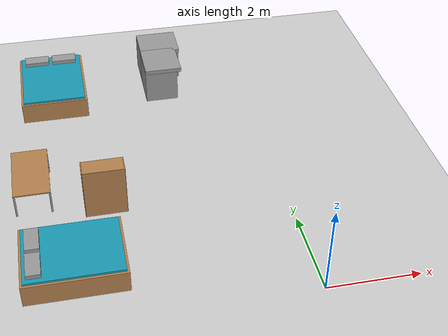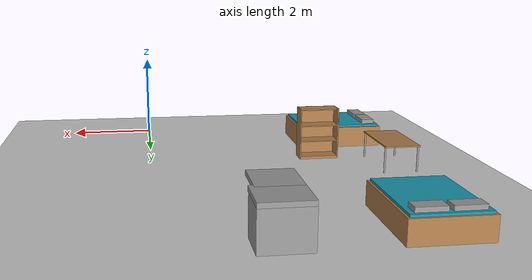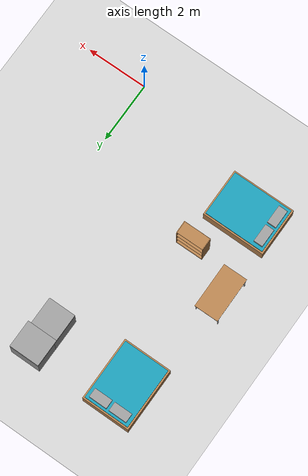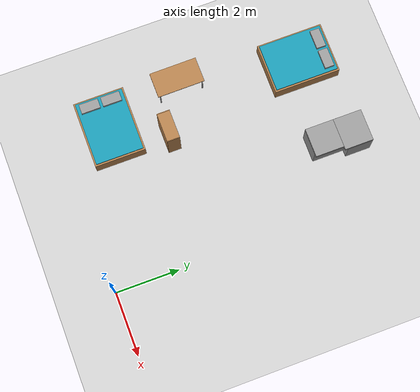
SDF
<sdf version="1.6">
 <world name="default">
  <model name="ground_plane">
   <static>1</static>
   <link name="link">
    <collision name="collision">
     <geometry><plane><normal>0 0 1</normal><size>100 100</size></plane></geometry>
     <surface><friction><ode><mu>100</mu><mu2>50</mu2></ode></friction></surface>
    </collision>
    <visual name="visual">
     <cast_shadows>0</cast_shadows>
     <geometry><plane><normal>0 0 1</normal><size>100 100</size></plane></geometry>
     <material>
      <script><uri>file://media/materials/scripts/gazebo.material</uri><name>Gazebo/Grey</name></script>
     </material>
    </visual>
   </link>
  </model>
  <model name="countertop">
   <link name="link_0">
    <pose>-0.025 0 -0.225 0 -0 0</pose>
    <inertial>
     <mass>1</mass>
     <inertia>
      <ixx>0.166667</ixx>
      <ixy>0</ixy>
      <ixz>0</ixz>
      <iyy>0.166667</iyy>
      <iyz>0</iyz>
      <izz>0.166667</izz>
     </inertia>
    </inertial>
    <visual name="visual">
     <geometry><box><size>0.8 1 0.8</size></box></geometry>
     <material>
      <lighting>1</lighting>
      <script><uri>file://media/materials/scripts/gazebo.material</uri><name>Gazebo/Grey</name></script>
      <shader type="pixel"><normal_map>__default__</normal_map></shader>
      <ambient>1 1 1 1</ambient>
      <diffuse>0.9 0.9 0.9 1</diffuse>
      <specular>0.01 0.01 0.01 1</specular>
      <emissive>0 0 0 1</emissive>
     </material>
    </visual>
    <collision name="collision">
     <geometry><box><size>0.8 1 0.8</size></box></geometry>
     <surface>
      <friction>
       <ode><mu>1</mu><mu2>1</mu2><fdir1>0 0 0</fdir1><slip1>0</slip1><slip2>0</slip2></ode>
       <torsional>
        <coefficient>1</coefficient>
        <patch_radius>0</patch_radius>
        <surface_radius>0</surface_radius>
        <use_patch_radius>1</use_patch_radius>
        <ode><slip>0</slip></ode>
       </torsional>
      </friction>
      <bounce><restitution_coefficient>0</restitution_coefficient><threshold>1e+06</threshold></bounce>
      <contact>
       <collide_without_contact>0</collide_without_contact>
       <collide_without_contact_bitmask>1</collide_without_contact_bitmask>
       <collide_bitmask>1</collide_bitmask>
       <ode>
        <soft_cfm>0</soft_cfm>
        <soft_erp>0.2</soft_erp>
        <kp>1e+13</kp>
        <kd>1</kd>
        <max_vel>0.01</max_vel>
        <min_depth>0</min_depth>
       </ode>
       <bullet>
        <split_impulse>1</split_impulse>
        <split_impulse_penetration_threshold>-0.01</split_impulse_penetration_threshold>
        <soft_cfm>0</soft_cfm>
        <soft_erp>0.2</soft_erp>
        <kp>1e+13</kp>
        <kd>1</kd>
       </bullet>
      </contact>
     </surface>
    </collision>
   </link>
   <link name="link_1">
    <pose>0.025 0 0.225 0 -0 0</pose>
    <inertial>
     <mass>1</mass>
     <inertia>
      <ixx>0.166667</ixx>
      <ixy>0</ixy>
      <ixz>0</ixz>
      <iyy>0.166667</iyy>
      <iyz>0</iyz>
      <izz>0.166667</izz>
     </inertia>
    </inertial>
    <visual name="visual">
     <geometry><box><size>0.9 1 0.1</size></box></geometry>
     <material>
      <lighting>1</lighting>
      <script><uri>file://media/materials/scripts/gazebo.material</uri><name>Gazebo/Grey</name></script>
      <shader type="pixel"><normal_map>__default__</normal_map></shader>
      <ambient>0.1 0.1 0.1 1</ambient>
      <diffuse>0.1 0.1 0.1 1</diffuse>
      <specular>0.01 0.01 0.01 1</specular>
      <emissive>0 0 0 1</emissive>
     </material>
    </visual>
    <collision name="collision">
     <geometry><box><size>0.9 1 0.1</size></box></geometry>
     <surface>
      <friction>
       <ode><mu>1</mu><mu2>1</mu2><fdir1>0 0 0</fdir1><slip1>0</slip1><slip2>0</slip2></ode>
       <torsional>
        <coefficient>1</coefficient>
        <patch_radius>0</patch_radius>
        <surface_radius>0</surface_radius>
        <use_patch_radius>1</use_patch_radius>
        <ode><slip>0</slip></ode>
       </torsional>
      </friction>
      <bounce><restitution_coefficient>0</restitution_coefficient><threshold>1e+06</threshold></bounce>
      <contact>
       <collide_without_contact>0</collide_without_contact>
       <collide_without_contact_bitmask>1</collide_without_contact_bitmask>
       <collide_bitmask>1</collide_bitmask>
       <ode>
        <soft_cfm>0</soft_cfm>
        <soft_erp>0.2</soft_erp>
        <kp>1e+13</kp>
        <kd>1</kd>
        <max_vel>0.01</max_vel>
        <min_depth>0</min_depth>
       </ode>
       <bullet>
        <split_impulse>1</split_impulse>
        <split_impulse_penetration_threshold>-0.01</split_impulse_penetration_threshold>
        <soft_cfm>0</soft_cfm>
        <soft_erp>0.2</soft_erp>
        <kp>1e+13</kp>
        <kd>1</kd>
       </bullet>
      </contact>
     </surface>
    </collision>
   </link>
   <joint name="link_0_JOINT_0" type="revolute">
    <parent>link_0</parent>
    <child>link_1</child>
    <axis>
     <xyz>1 0 0</xyz>
     <use_parent_model_frame>0</use_parent_model_frame>
     <limit>
      <lower>-1.79769e+308</lower>
      <upper>1.79769e+308</upper>
      <effort>-1</effort>
      <velocity>-1</velocity>
     </limit>
     <dynamics>
      <spring_reference>0</spring_reference>
      <spring_stiffness>0</spring_stiffness>
      <damping>0</damping>
      <friction>0</friction>
     </dynamics>
    </axis>
    <physics>
     <ode><limit><cfm>0</cfm><erp>0.2</erp></limit><suspension><cfm>0</cfm><erp>0.2</erp></suspension></ode>
    </physics>
   </joint>
   <static>1</static>
   <pose>-2.02123 8.33439 0.618131 0 0 -1.5707</pose>
  </model>
  <model name="countertop_clone_0">
   <link name="link_0">
    <pose>-0.025 0 -0.225 0 -0 0</pose>
    <inertial>
     <mass>1</mass>
     <inertia>
      <ixx>0.166667</ixx>
      <ixy>0</ixy>
      <ixz>0</ixz>
      <iyy>0.166667</iyy>
      <iyz>0</iyz>
      <izz>0.166667</izz>
     </inertia>
    </inertial>
    <visual name="visual">
     <geometry><box><size>0.8 1 0.8</size></box></geometry>
     <material>
      <lighting>1</lighting>
      <script><uri>file://media/materials/scripts/gazebo.material</uri><name>Gazebo/Grey</name></script>
      <shader type="pixel"><normal_map>__default__</normal_map></shader>
      <ambient>1 1 1 1</ambient>
      <diffuse>0.9 0.9 0.9 1</diffuse>
      <specular>0.01 0.01 0.01 1</specular>
      <emissive>0 0 0 1</emissive>
     </material>
    </visual>
    <collision name="collision">
     <geometry><box><size>0.8 1 0.8</size></box></geometry>
     <surface>
      <friction>
       <ode><mu>1</mu><mu2>1</mu2><fdir1>0 0 0</fdir1><slip1>0</slip1><slip2>0</slip2></ode>
       <torsional>
        <coefficient>1</coefficient>
        <patch_radius>0</patch_radius>
        <surface_radius>0</surface_radius>
        <use_patch_radius>1</use_patch_radius>
        <ode><slip>0</slip></ode>
       </torsional>
      </friction>
      <bounce><restitution_coefficient>0</restitution_coefficient><threshold>1e+06</threshold></bounce>
      <contact>
       <collide_without_contact>0</collide_without_contact>
       <collide_without_contact_bitmask>1</collide_without_contact_bitmask>
       <collide_bitmask>1</collide_bitmask>
       <ode>
        <soft_cfm>0</soft_cfm>
        <soft_erp>0.2</soft_erp>
        <kp>1e+13</kp>
        <kd>1</kd>
        <max_vel>0.01</max_vel>
        <min_depth>0</min_depth>
       </ode>
       <bullet>
        <split_impulse>1</split_impulse>
        <split_impulse_penetration_threshold>-0.01</split_impulse_penetration_threshold>
        <soft_cfm>0</soft_cfm>
        <soft_erp>0.2</soft_erp>
        <kp>1e+13</kp>
        <kd>1</kd>
       </bullet>
      </contact>
     </surface>
    </collision>
   </link>
   <link name="link_1">
    <pose>0.025 0 0.225 0 -0 0</pose>
    <inertial>
     <mass>1</mass>
     <inertia>
      <ixx>0.166667</ixx>
      <ixy>0</ixy>
      <ixz>0</ixz>
      <iyy>0.166667</iyy>
      <iyz>0</iyz>
      <izz>0.166667</izz>
     </inertia>
    </inertial>
    <visual name="visual">
     <geometry><box><size>0.9 1 0.1</size></box></geometry>
     <material>
      <lighting>1</lighting>
      <script><uri>file://media/materials/scripts/gazebo.material</uri><name>Gazebo/Grey</name></script>
      <shader type="pixel"><normal_map>__default__</normal_map></shader>
      <ambient>0.1 0.1 0.1 1</ambient>
      <diffuse>0.1 0.1 0.1 1</diffuse>
      <specular>0.01 0.01 0.01 1</specular>
      <emissive>0 0 0 1</emissive>
     </material>
    </visual>
    <collision name="collision">
     <geometry><box><size>0.9 1 0.1</size></box></geometry>
     <surface>
      <friction>
       <ode><mu>1</mu><mu2>1</mu2><fdir1>0 0 0</fdir1><slip1>0</slip1><slip2>0</slip2></ode>
       <torsional>
        <coefficient>1</coefficient>
        <patch_radius>0</patch_radius>
        <surface_radius>0</surface_radius>
        <use_patch_radius>1</use_patch_radius>
        <ode><slip>0</slip></ode>
       </torsional>
      </friction>
      <bounce><restitution_coefficient>0</restitution_coefficient><threshold>1e+06</threshold></bounce>
      <contact>
       <collide_without_contact>0</collide_without_contact>
       <collide_without_contact_bitmask>1</collide_without_contact_bitmask>
       <collide_bitmask>1</collide_bitmask>
       <ode>
        <soft_cfm>0</soft_cfm>
        <soft_erp>0.2</soft_erp>
        <kp>1e+13</kp>
        <kd>1</kd>
        <max_vel>0.01</max_vel>
        <min_depth>0</min_depth>
       </ode>
       <bullet>
        <split_impulse>1</split_impulse>
        <split_impulse_penetration_threshold>-0.01</split_impulse_penetration_threshold>
        <soft_cfm>0</soft_cfm>
        <soft_erp>0.2</soft_erp>
        <kp>1e+13</kp>
        <kd>1</kd>
       </bullet>
      </contact>
     </surface>
    </collision>
   </link>
   <joint name="link_0_JOINT_0" type="revolute">
    <parent>link_0</parent>
    <child>link_1</child>
    <axis>
     <xyz>1 0 0</xyz>
     <use_parent_model_frame>0</use_parent_model_frame>
     <limit>
      <lower>-1.79769e+308</lower>
      <upper>1.79769e+308</upper>
      <effort>-1</effort>
      <velocity>-1</velocity>
     </limit>
     <dynamics>
      <spring_reference>0</spring_reference>
      <spring_stiffness>0</spring_stiffness>
      <damping>0</damping>
      <friction>0</friction>
     </dynamics>
    </axis>
    <physics>
     <ode><limit><cfm>0</cfm><erp>0.2</erp></limit><suspension><cfm>0</cfm><erp>0.2</erp></suspension></ode>
    </physics>
   </joint>
   <static>1</static>
   <pose>-2.09755 7.4646 0.618131 0 0 -0.000213</pose>
  </model>
  <model name="bed">
   <link name="link_2">
    <pose>0.691457 -0.026442 0.334902 0 -0 0</pose>
    <inertial>
     <mass>1</mass>
     <inertia>
      <ixx>0.166667</ixx>
      <ixy>0</ixy>
      <ixz>0</ixz>
      <iyy>0.166667</iyy>
      <iyz>0</iyz>
      <izz>0.166667</izz>
     </inertia>
    </inertial>
    <visual name="visual">
     <geometry><box><size>2 1.5 0.05</size></box></geometry>
     <material>
      <lighting>1</lighting>
      <script><uri>file://media/materials/scripts/gazebo.material</uri><name>Gazebo/Grey</name></script>
      <shader type="pixel"><normal_map>__default__</normal_map></shader>
      <ambient>0.1 0.2 0.6 1</ambient>
      <diffuse>0.1 0.6 0.7 0</diffuse>
      <specular>0.01 0.01 0.01 1</specular>
      <emissive>0 0 0 1</emissive>
     </material>
    </visual>
    <collision name="collision">
     <geometry><box><size>2 1.5 0.05</size></box></geometry>
     <surface>
      <friction>
       <ode><mu>1</mu><mu2>1</mu2><fdir1>0 0 0</fdir1><slip1>0</slip1><slip2>0</slip2></ode>
       <torsional>
        <coefficient>1</coefficient>
        <patch_radius>0</patch_radius>
        <surface_radius>0</surface_radius>
        <use_patch_radius>1</use_patch_radius>
        <ode><slip>0</slip></ode>
       </torsional>
      </friction>
      <bounce><restitution_coefficient>0</restitution_coefficient><threshold>1e+06</threshold></bounce>
      <contact>
       <collide_without_contact>0</collide_without_contact>
       <collide_without_contact_bitmask>1</collide_without_contact_bitmask>
       <collide_bitmask>1</collide_bitmask>
       <ode>
        <soft_cfm>0</soft_cfm>
        <soft_erp>0.2</soft_erp>
        <kp>1e+13</kp>
        <kd>1</kd>
        <max_vel>0.01</max_vel>
        <min_depth>0</min_depth>
       </ode>
       <bullet>
        <split_impulse>1</split_impulse>
        <split_impulse_penetration_threshold>-0.01</split_impulse_penetration_threshold>
        <soft_cfm>0</soft_cfm>
        <soft_erp>0.2</soft_erp>
        <kp>1e+13</kp>
        <kd>1</kd>
       </bullet>
      </contact>
     </surface>
    </collision>
   </link>
   <link name="link_3">
    <pose>-0.084192 -0.371087 0.406762 0 -0 0</pose>
    <inertial>
     <mass>1</mass>
     <inertia>
      <ixx>0.166667</ixx>
      <ixy>0</ixy>
      <ixz>0</ixz>
      <iyy>0.166667</iyy>
      <iyz>0</iyz>
      <izz>0.166667</izz>
     </inertia>
    </inertial>
    <visual name="visual">
     <geometry><box><size>0.3 0.6 0.1</size></box></geometry>
     <material>
      <lighting>1</lighting>
      <script><uri>file://media/materials/scripts/gazebo.material</uri><name>Gazebo/Grey</name></script>
      <shader type="pixel"><normal_map>__default__</normal_map></shader>
      <ambient>1 1 1 1</ambient>
      <diffuse>0.9 0.9 0.9 1</diffuse>
      <specular>0.01 0.01 0.01 1</specular>
      <emissive>0 0 0 1</emissive>
     </material>
    </visual>
    <collision name="collision">
     <geometry><box><size>0.3 0.6 0.1</size></box></geometry>
     <surface>
      <friction>
       <ode><mu>1</mu><mu2>1</mu2><fdir1>0 0 0</fdir1><slip1>0</slip1><slip2>0</slip2></ode>
       <torsional>
        <coefficient>1</coefficient>
        <patch_radius>0</patch_radius>
        <surface_radius>0</surface_radius>
        <use_patch_radius>1</use_patch_radius>
        <ode><slip>0</slip></ode>
       </torsional>
      </friction>
      <bounce><restitution_coefficient>0</restitution_coefficient><threshold>1e+06</threshold></bounce>
      <contact>
       <collide_without_contact>0</collide_without_contact>
       <collide_without_contact_bitmask>1</collide_without_contact_bitmask>
       <collide_bitmask>1</collide_bitmask>
       <ode>
        <soft_cfm>0</soft_cfm>
        <soft_erp>0.2</soft_erp>
        <kp>1e+13</kp>
        <kd>1</kd>
        <max_vel>0.01</max_vel>
        <min_depth>0</min_depth>
       </ode>
       <bullet>
        <split_impulse>1</split_impulse>
        <split_impulse_penetration_threshold>-0.01</split_impulse_penetration_threshold>
        <soft_cfm>0</soft_cfm>
        <soft_erp>0.2</soft_erp>
        <kp>1e+13</kp>
        <kd>1</kd>
       </bullet>
      </contact>
     </surface>
    </collision>
   </link>
   <link name="link_3_clone">
    <pose>-0.084438 0.31756 0.40773 0 -0 0</pose>
    <inertial>
     <mass>1</mass>
     <inertia>
      <ixx>0.166667</ixx>
      <ixy>0</ixy>
      <ixz>0</ixz>
      <iyy>0.166667</iyy>
      <iyz>0</iyz>
      <izz>0.166667</izz>
     </inertia>
    </inertial>
    <visual name="visual">
     <geometry><box><size>0.3 0.6 0.1</size></box></geometry>
     <material>
      <lighting>1</lighting>
      <script><uri>file://media/materials/scripts/gazebo.material</uri><name>Gazebo/Grey</name></script>
      <shader type="pixel"><normal_map>__default__</normal_map></shader>
      <ambient>1 1 1 1</ambient>
      <diffuse>0.9 0.9 0.9 1</diffuse>
      <specular>0.01 0.01 0.01 1</specular>
      <emissive>0 0 0 1</emissive>
     </material>
    </visual>
    <collision name="collision">
     <geometry><box><size>0.3 0.6 0.1</size></box></geometry>
     <surface>
      <friction>
       <ode><mu>1</mu><mu2>1</mu2><fdir1>0 0 0</fdir1><slip1>0</slip1><slip2>0</slip2></ode>
       <torsional>
        <coefficient>1</coefficient>
        <patch_radius>0</patch_radius>
        <surface_radius>0</surface_radius>
        <use_patch_radius>1</use_patch_radius>
        <ode><slip>0</slip></ode>
       </torsional>
      </friction>
      <bounce><restitution_coefficient>0</restitution_coefficient><threshold>1e+06</threshold></bounce>
      <contact>
       <collide_without_contact>0</collide_without_contact>
       <collide_without_contact_bitmask>1</collide_without_contact_bitmask>
       <collide_bitmask>1</collide_bitmask>
       <ode>
        <soft_cfm>0</soft_cfm>
        <soft_erp>0.2</soft_erp>
        <kp>1e+13</kp>
        <kd>1</kd>
        <max_vel>0.01</max_vel>
        <min_depth>0</min_depth>
       </ode>
       <bullet>
        <split_impulse>1</split_impulse>
        <split_impulse_penetration_threshold>-0.01</split_impulse_penetration_threshold>
        <soft_cfm>0</soft_cfm>
        <soft_erp>0.2</soft_erp>
        <kp>1e+13</kp>
        <kd>1</kd>
       </bullet>
      </contact>
     </surface>
    </collision>
   </link>
   <link name="link_4">
    <pose>0.691457 -0.026442 0.059902 0 -0 0</pose>
    <inertial>
     <mass>1</mass>
     <inertia>
      <ixx>0.166667</ixx>
      <ixy>0</ixy>
      <ixz>0</ixz>
      <iyy>0.166667</iyy>
      <iyz>0</iyz>
      <izz>0.166667</izz>
     </inertia>
    </inertial>
    <visual name="visual">
     <geometry><box><size>2.1 1.6 0.5</size></box></geometry>
     <material>
      <lighting>1</lighting>
      <script><uri>file://media/materials/scripts/gazebo.material</uri><name>Gazebo/Wood</name></script>
      <shader type="pixel"><normal_map>__default__</normal_map></shader>
      <ambient>0.3 0.3 0.3 1</ambient>
      <diffuse>0.7 0.7 0.7 1</diffuse>
      <specular>0.01 0.01 0.01 1</specular>
      <emissive>0 0 0 1</emissive>
     </material>
    </visual>
    <collision name="collision">
     <geometry><box><size>2.1 1.6 0.5</size></box></geometry>
     <surface>
      <friction>
       <ode><mu>1</mu><mu2>1</mu2><fdir1>0 0 0</fdir1><slip1>0</slip1><slip2>0</slip2></ode>
       <torsional>
        <coefficient>1</coefficient>
        <patch_radius>0</patch_radius>
        <surface_radius>0</surface_radius>
        <use_patch_radius>1</use_patch_radius>
        <ode><slip>0</slip></ode>
       </torsional>
      </friction>
      <bounce><restitution_coefficient>0</restitution_coefficient><threshold>1e+06</threshold></bounce>
      <contact>
       <collide_without_contact>0</collide_without_contact>
       <collide_without_contact_bitmask>1</collide_without_contact_bitmask>
       <collide_bitmask>1</collide_bitmask>
       <ode>
        <soft_cfm>0</soft_cfm>
        <soft_erp>0.2</soft_erp>
        <kp>1e+13</kp>
        <kd>1</kd>
        <max_vel>0.01</max_vel>
        <min_depth>0</min_depth>
       </ode>
       <bullet>
        <split_impulse>1</split_impulse>
        <split_impulse_penetration_threshold>-0.01</split_impulse_penetration_threshold>
        <soft_cfm>0</soft_cfm>
        <soft_erp>0.2</soft_erp>
        <kp>1e+13</kp>
        <kd>1</kd>
       </bullet>
      </contact>
     </surface>
    </collision>
   </link>
   <joint name="link_2_JOINT_1" type="fixed">
    <parent>link_2</parent>
    <child>link_3</child>
    <physics>
     <ode><limit><cfm>0</cfm><erp>0.2</erp></limit><suspension><cfm>0</cfm><erp>0.2</erp></suspension></ode>
    </physics>
   </joint>
   <joint name="link_2_JOINT_2" type="fixed">
    <parent>link_2</parent>
    <child>link_3_clone</child>
    <physics>
     <ode><limit><cfm>0</cfm><erp>0.2</erp></limit><suspension><cfm>0</cfm><erp>0.2</erp></suspension></ode>
    </physics>
   </joint>
   <joint name="link_4_JOINT_3" type="fixed">
    <parent>link_4</parent>
    <child>link_2</child>
    <physics>
     <ode><limit><cfm>0</cfm><erp>0.2</erp></limit><suspension><cfm>0</cfm><erp>0.2</erp></suspension></ode>
    </physics>
   </joint>
   <static>1</static>
   <pose>-5.47662 1.51851 0.183574 0 -0 0</pose>
  </model>
  <model name="bookshelf">
   <static>1</static>
   <link name="link">
    <inertial><mass>1</mass></inertial>
    <collision name="back">
     <pose>0 0.005 0.6 0 -0 0</pose>
     <geometry><box><size>0.9 0.01 1.2</size></box></geometry>
    </collision>
    <visual name="visual1">
     <pose>0 0.005 0.6 0 -0 0</pose>
     <geometry><box><size>0.9 0.01 1.2</size></box></geometry>
     <material>
      <script><uri>file://media/materials/scripts/gazebo.material</uri><name>Gazebo/Wood</name></script>
     </material>
    </visual>
    <collision name="left_side">
     <pose>0.45 -0.195 0.6 0 -0 0</pose>
     <geometry><box><size>0.02 0.4 1.2</size></box></geometry>
    </collision>
    <visual name="visual2">
     <pose>0.45 -0.195 0.6 0 -0 0</pose>
     <geometry><box><size>0.02 0.4 1.2</size></box></geometry>
     <material>
      <script><uri>file://media/materials/scripts/gazebo.material</uri><name>Gazebo/Wood</name></script>
     </material>
    </visual>
    <collision name="right_side">
     <pose>-0.45 -0.195 0.6 0 -0 0</pose>
     <geometry><box><size>0.02 0.4 1.2</size></box></geometry>
    </collision>
    <visual name="visual3">
     <pose>-0.45 -0.195 0.6 0 -0 0</pose>
     <geometry><box><size>0.02 0.4 1.2</size></box></geometry>
     <material>
      <script><uri>file://media/materials/scripts/gazebo.material</uri><name>Gazebo/Wood</name></script>
     </material>
    </visual>
    <collision name="bottom">
     <pose>0 -0.195 0.03 0 -0 0</pose>
     <geometry><box><size>0.88 0.4 0.06</size></box></geometry>
    </collision>
    <visual name="visual4">
     <pose>0 -0.195 0.03 0 -0 0</pose>
     <geometry><box><size>0.88 0.4 0.06</size></box></geometry>
     <material>
      <script><uri>file://media/materials/scripts/gazebo.material</uri><name>Gazebo/Wood</name></script>
     </material>
    </visual>
    <collision name="top">
     <pose>0 -0.195 1.19 0 -0 0</pose>
     <geometry><box><size>0.88 0.4 0.02</size></box></geometry>
    </collision>
    <visual name="visual5">
     <pose>0 -0.195 1.19 0 -0 0</pose>
     <geometry><box><size>0.88 0.4 0.02</size></box></geometry>
     <material>
      <script><uri>file://media/materials/scripts/gazebo.material</uri><name>Gazebo/Wood</name></script>
     </material>
    </visual>
    <collision name="low_shelf">
     <pose>0 -0.195 0.43 0 -0 0</pose>
     <geometry><box><size>0.88 0.4 0.02</size></box></geometry>
    </collision>
    <visual name="visual6">
     <pose>0 -0.195 0.43 0 -0 0</pose>
     <geometry><box><size>0.88 0.4 0.02</size></box></geometry>
     <material>
      <script><uri>file://media/materials/scripts/gazebo.material</uri><name>Gazebo/Wood</name></script>
     </material>
    </visual>
    <collision name="high_shelf">
     <pose>0 -0.195 0.8 0 -0 0</pose>
     <geometry><box><size>0.88 0.4 0.02</size></box></geometry>
    </collision>
    <visual name="visual7">
     <pose>0 -0.195 0.8 0 -0 0</pose>
     <geometry><box><size>0.88 0.4 0.02</size></box></geometry>
     <material>
      <script><uri>file://media/materials/scripts/gazebo.material</uri><name>Gazebo/Wood</name></script>
     </material>
    </visual>
   </link>
   <pose>-3.97161 2.94781 0 0 0 -3.13607</pose>
  </model>
  <model name="table_0">
   <static>1</static>
   <link name="link">
    <collision name="surface">
     <pose>0 0 1 0 -0 0</pose>
     <geometry><box><size>1.5 0.8 0.03</size></box></geometry>
     <surface><friction><ode><mu>0.6</mu><mu2>0.6</mu2></ode></friction></surface>
    </collision>
    <visual name="visual1">
     <pose>0 0 1 0 -0 0</pose>
     <geometry><box><size>1.5 0.8 0.03</size></box></geometry>
     <material>
      <script><uri>file://media/materials/scripts/gazebo.material</uri><name>Gazebo/Wood</name></script>
     </material>
    </visual>
    <collision name="front_left_leg">
     <pose>0.68 0.38 0.5 0 -0 0</pose>
     <geometry><cylinder><radius>0.02</radius><length>1</length></cylinder></geometry>
    </collision>
    <visual name="front_left_leg">
     <pose>0.68 0.38 0.5 0 -0 0</pose>
     <geometry><cylinder><radius>0.02</radius><length>1</length></cylinder></geometry>
     <material>
      <script><uri>file://media/materials/scripts/gazebo.material</uri><name>Gazebo/Grey</name></script>
     </material>
    </visual>
    <collision name="front_right_leg">
     <pose>0.68 -0.38 0.5 0 -0 0</pose>
     <geometry><cylinder><radius>0.02</radius><length>1</length></cylinder></geometry>
    </collision>
    <visual name="front_right_leg">
     <pose>0.68 -0.38 0.5 0 -0 0</pose>
     <geometry><cylinder><radius>0.02</radius><length>1</length></cylinder></geometry>
     <material>
      <script><uri>file://media/materials/scripts/gazebo.material</uri><name>Gazebo/Grey</name></script>
     </material>
    </visual>
    <collision name="back_right_leg">
     <pose>-0.68 -0.38 0.5 0 -0 0</pose>
     <geometry><cylinder><radius>0.02</radius><length>1</length></cylinder></geometry>
    </collision>
    <visual name="back_right_leg">
     <pose>-0.68 -0.38 0.5 0 -0 0</pose>
     <geometry><cylinder><radius>0.02</radius><length>1</length></cylinder></geometry>
     <material>
      <script><uri>file://media/materials/scripts/gazebo.material</uri><name>Gazebo/Grey</name></script>
     </material>
    </visual>
    <collision name="back_left_leg">
     <pose>-0.68 0.38 0.5 0 -0 0</pose>
     <geometry><cylinder><radius>0.02</radius><length>1</length></cylinder></geometry>
    </collision>
    <visual name="back_left_leg">
     <pose>-0.68 0.38 0.5 0 -0 0</pose>
     <geometry><cylinder><radius>0.02</radius><length>1</length></cylinder></geometry>
     <material>
      <script><uri>file://media/materials/scripts/gazebo.material</uri><name>Gazebo/Grey</name></script>
     </material>
    </visual>
   </link>
   <pose>-5.51267 3.94775 -0.405844 0 0 -1.56526</pose>
  </model>
  <model name="bed_clone">
   <link name="link_2">
    <pose>0.691457 -0.026442 0.334902 0 -0 0</pose>
    <inertial>
     <mass>1</mass>
     <inertia>
      <ixx>0.166667</ixx>
      <ixy>0</ixy>
      <ixz>0</ixz>
      <iyy>0.166667</iyy>
      <iyz>0</iyz>
      <izz>0.166667</izz>
     </inertia>
    </inertial>
    <visual name="visual">
     <geometry><box><size>2 1.5 0.05</size></box></geometry>
     <material>
      <lighting>1</lighting>
      <script><uri>file://media/materials/scripts/gazebo.material</uri><name>Gazebo/Grey</name></script>
      <shader type="pixel"><normal_map>__default__</normal_map></shader>
      <ambient>0.1 0.2 0.6 1</ambient>
      <diffuse>0.1 0.6 0.7 0</diffuse>
      <specular>0.01 0.01 0.01 1</specular>
      <emissive>0 0 0 1</emissive>
     </material>
    </visual>
    <collision name="collision">
     <geometry><box><size>2 1.5 0.05</size></box></geometry>
     <surface>
      <friction>
       <ode><mu>1</mu><mu2>1</mu2><fdir1>0 0 0</fdir1><slip1>0</slip1><slip2>0</slip2></ode>
       <torsional>
        <coefficient>1</coefficient>
        <patch_radius>0</patch_radius>
        <surface_radius>0</surface_radius>
        <use_patch_radius>1</use_patch_radius>
        <ode><slip>0</slip></ode>
       </torsional>
      </friction>
      <bounce><restitution_coefficient>0</restitution_coefficient><threshold>1e+06</threshold></bounce>
      <contact>
       <collide_without_contact>0</collide_without_contact>
       <collide_without_contact_bitmask>1</collide_without_contact_bitmask>
       <collide_bitmask>1</collide_bitmask>
       <ode>
        <soft_cfm>0</soft_cfm>
        <soft_erp>0.2</soft_erp>
        <kp>1e+13</kp>
        <kd>1</kd>
        <max_vel>0.01</max_vel>
        <min_depth>0</min_depth>
       </ode>
       <bullet>
        <split_impulse>1</split_impulse>
        <split_impulse_penetration_threshold>-0.01</split_impulse_penetration_threshold>
        <soft_cfm>0</soft_cfm>
        <soft_erp>0.2</soft_erp>
        <kp>1e+13</kp>
        <kd>1</kd>
       </bullet>
      </contact>
     </surface>
    </collision>
   </link>
   <link name="link_3">
    <pose>-0.084192 -0.371087 0.406762 0 -0 0</pose>
    <inertial>
     <mass>1</mass>
     <inertia>
      <ixx>0.166667</ixx>
      <ixy>0</ixy>
      <ixz>0</ixz>
      <iyy>0.166667</iyy>
      <iyz>0</iyz>
      <izz>0.166667</izz>
     </inertia>
    </inertial>
    <visual name="visual">
     <geometry><box><size>0.3 0.6 0.1</size></box></geometry>
     <material>
      <lighting>1</lighting>
      <script><uri>file://media/materials/scripts/gazebo.material</uri><name>Gazebo/Grey</name></script>
      <shader type="pixel"><normal_map>__default__</normal_map></shader>
      <ambient>1 1 1 1</ambient>
      <diffuse>0.9 0.9 0.9 1</diffuse>
      <specular>0.01 0.01 0.01 1</specular>
      <emissive>0 0 0 1</emissive>
     </material>
    </visual>
    <collision name="collision">
     <geometry><box><size>0.3 0.6 0.1</size></box></geometry>
     <surface>
      <friction>
       <ode><mu>1</mu><mu2>1</mu2><fdir1>0 0 0</fdir1><slip1>0</slip1><slip2>0</slip2></ode>
       <torsional>
        <coefficient>1</coefficient>
        <patch_radius>0</patch_radius>
        <surface_radius>0</surface_radius>
        <use_patch_radius>1</use_patch_radius>
        <ode><slip>0</slip></ode>
       </torsional>
      </friction>
      <bounce><restitution_coefficient>0</restitution_coefficient><threshold>1e+06</threshold></bounce>
      <contact>
       <collide_without_contact>0</collide_without_contact>
       <collide_without_contact_bitmask>1</collide_without_contact_bitmask>
       <collide_bitmask>1</collide_bitmask>
       <ode>
        <soft_cfm>0</soft_cfm>
        <soft_erp>0.2</soft_erp>
        <kp>1e+13</kp>
        <kd>1</kd>
        <max_vel>0.01</max_vel>
        <min_depth>0</min_depth>
       </ode>
       <bullet>
        <split_impulse>1</split_impulse>
        <split_impulse_penetration_threshold>-0.01</split_impulse_penetration_threshold>
        <soft_cfm>0</soft_cfm>
        <soft_erp>0.2</soft_erp>
        <kp>1e+13</kp>
        <kd>1</kd>
       </bullet>
      </contact>
     </surface>
    </collision>
   </link>
   <link name="link_3_clone">
    <pose>-0.084438 0.31756 0.40773 0 -0 0</pose>
    <inertial>
     <mass>1</mass>
     <inertia>
      <ixx>0.166667</ixx>
      <ixy>0</ixy>
      <ixz>0</ixz>
      <iyy>0.166667</iyy>
      <iyz>0</iyz>
      <izz>0.166667</izz>
     </inertia>
    </inertial>
    <visual name="visual">
     <geometry><box><size>0.3 0.6 0.1</size></box></geometry>
     <material>
      <lighting>1</lighting>
      <script><uri>file://media/materials/scripts/gazebo.material</uri><name>Gazebo/Grey</name></script>
      <shader type="pixel"><normal_map>__default__</normal_map></shader>
      <ambient>1 1 1 1</ambient>
      <diffuse>0.9 0.9 0.9 1</diffuse>
      <specular>0.01 0.01 0.01 1</specular>
      <emissive>0 0 0 1</emissive>
     </material>
    </visual>
    <collision name="collision">
     <geometry><box><size>0.3 0.6 0.1</size></box></geometry>
     <surface>
      <friction>
       <ode><mu>1</mu><mu2>1</mu2><fdir1>0 0 0</fdir1><slip1>0</slip1><slip2>0</slip2></ode>
       <torsional>
        <coefficient>1</coefficient>
        <patch_radius>0</patch_radius>
        <surface_radius>0</surface_radius>
        <use_patch_radius>1</use_patch_radius>
        <ode><slip>0</slip></ode>
       </torsional>
      </friction>
      <bounce><restitution_coefficient>0</restitution_coefficient><threshold>1e+06</threshold></bounce>
      <contact>
       <collide_without_contact>0</collide_without_contact>
       <collide_without_contact_bitmask>1</collide_without_contact_bitmask>
       <collide_bitmask>1</collide_bitmask>
       <ode>
        <soft_cfm>0</soft_cfm>
        <soft_erp>0.2</soft_erp>
        <kp>1e+13</kp>
        <kd>1</kd>
        <max_vel>0.01</max_vel>
        <min_depth>0</min_depth>
       </ode>
       <bullet>
        <split_impulse>1</split_impulse>
        <split_impulse_penetration_threshold>-0.01</split_impulse_penetration_threshold>
        <soft_cfm>0</soft_cfm>
        <soft_erp>0.2</soft_erp>
        <kp>1e+13</kp>
        <kd>1</kd>
       </bullet>
      </contact>
     </surface>
    </collision>
   </link>
   <link name="link_4">
    <pose>0.691457 -0.026442 0.059902 0 -0 0</pose>
    <inertial>
     <mass>1</mass>
     <inertia>
      <ixx>0.166667</ixx>
      <ixy>0</ixy>
      <ixz>0</ixz>
      <iyy>0.166667</iyy>
      <iyz>0</iyz>
      <izz>0.166667</izz>
     </inertia>
    </inertial>
    <visual name="visual">
     <geometry><box><size>2.1 1.6 0.5</size></box></geometry>
     <material>
      <lighting>1</lighting>
      <script><uri>file://media/materials/scripts/gazebo.material</uri><name>Gazebo/Wood</name></script>
      <shader type="pixel"><normal_map>__default__</normal_map></shader>
      <ambient>0.3 0.3 0.3 1</ambient>
      <diffuse>0.7 0.7 0.7 1</diffuse>
      <specular>0.01 0.01 0.01 1</specular>
      <emissive>0 0 0 1</emissive>
     </material>
    </visual>
    <collision name="collision">
     <geometry><box><size>2.1 1.6 0.5</size></box></geometry>
     <surface>
      <friction>
       <ode><mu>1</mu><mu2>1</mu2><fdir1>0 0 0</fdir1><slip1>0</slip1><slip2>0</slip2></ode>
       <torsional>
        <coefficient>1</coefficient>
        <patch_radius>0</patch_radius>
        <surface_radius>0</surface_radius>
        <use_patch_radius>1</use_patch_radius>
        <ode><slip>0</slip></ode>
       </torsional>
      </friction>
      <bounce><restitution_coefficient>0</restitution_coefficient><threshold>1e+06</threshold></bounce>
      <contact>
       <collide_without_contact>0</collide_without_contact>
       <collide_without_contact_bitmask>1</collide_without_contact_bitmask>
       <collide_bitmask>1</collide_bitmask>
       <ode>
        <soft_cfm>0</soft_cfm>
        <soft_erp>0.2</soft_erp>
        <kp>1e+13</kp>
        <kd>1</kd>
        <max_vel>0.01</max_vel>
        <min_depth>0</min_depth>
       </ode>
       <bullet>
        <split_impulse>1</split_impulse>
        <split_impulse_penetration_threshold>-0.01</split_impulse_penetration_threshold>
        <soft_cfm>0</soft_cfm>
        <soft_erp>0.2</soft_erp>
        <kp>1e+13</kp>
        <kd>1</kd>
       </bullet>
      </contact>
     </surface>
    </collision>
   </link>
   <joint name="link_2_JOINT_1" type="fixed">
    <parent>link_2</parent>
    <child>link_3</child>
    <physics>
     <ode><limit><cfm>0</cfm><erp>0.2</erp></limit><suspension><cfm>0</cfm><erp>0.2</erp></suspension></ode>
    </physics>
   </joint>
   <joint name="link_2_JOINT_2" type="fixed">
    <parent>link_2</parent>
    <child>link_3_clone</child>
    <physics>
     <ode><limit><cfm>0</cfm><erp>0.2</erp></limit><suspension><cfm>0</cfm><erp>0.2</erp></suspension></ode>
    </physics>
   </joint>
   <joint name="link_4_JOINT_3" type="fixed">
    <parent>link_4</parent>
    <child>link_2</child>
    <physics>
     <ode><limit><cfm>0</cfm><erp>0.2</erp></limit><suspension><cfm>0</cfm><erp>0.2</erp></suspension></ode>
    </physics>
   </joint>
   <static>1</static>
   <pose>-4.81018 8.36825 0.183574 0 0 -1.5707</pose>
  </model>
 </world>
</sdf>
